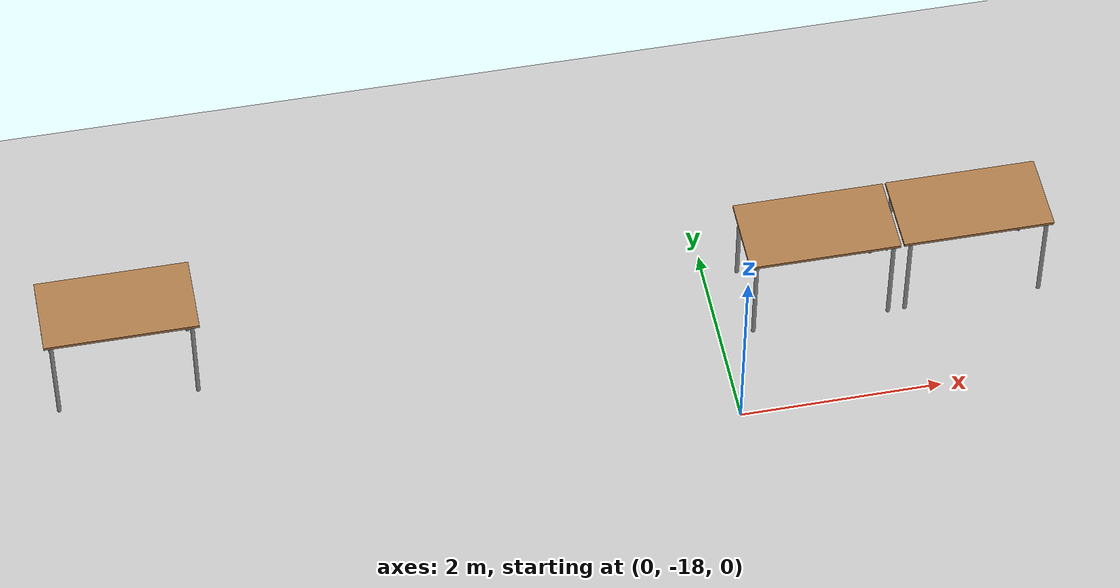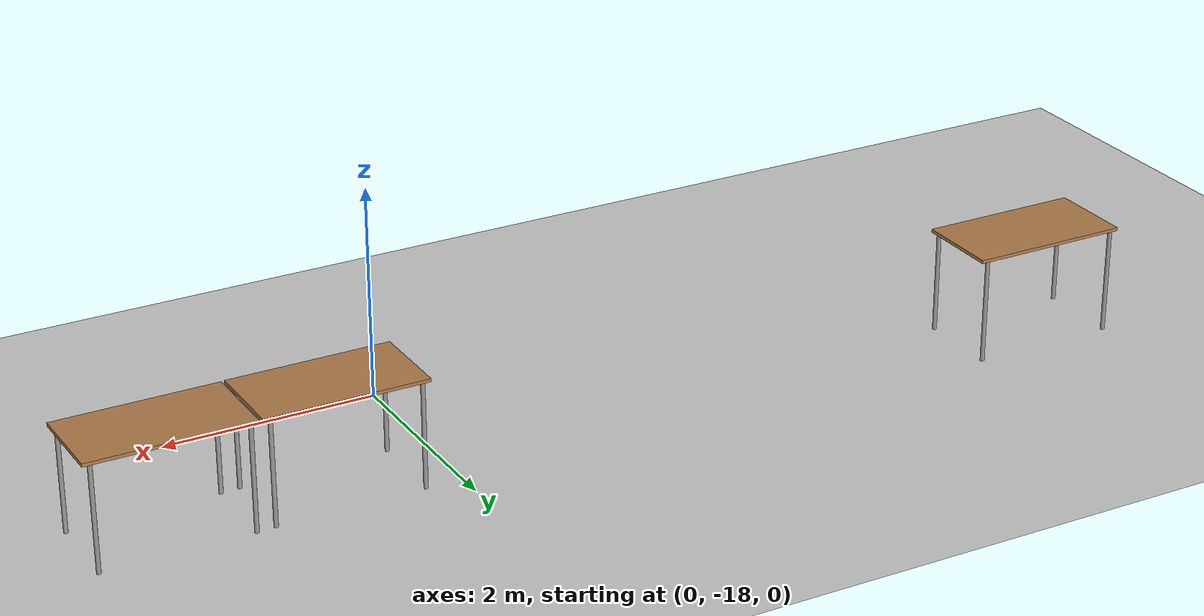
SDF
<sdf version="1.6">
 <world name="default">
  <model name="ground_plane">
   <static>1</static>
   <link name="link">
    <collision name="collision">
     <geometry><plane><normal>0 0 1</normal><size>100 100</size></plane></geometry>
     <surface><friction><ode><mu>100</mu><mu2>50</mu2></ode></friction></surface>
    </collision>
    <visual name="visual">
     <cast_shadows>0</cast_shadows>
     <geometry><plane><normal>0 0 1</normal><size>100 100</size></plane></geometry>
     <material>
      <script><uri>file://media/materials/scripts/gazebo.material</uri><name>Gazebo/Grey</name></script>
     </material>
    </visual>
   </link>
  </model>
  <model name="table_clone_5">
   <static>1</static>
   <link name="link">
    <collision name="surface">
     <pose>0 0 1 0 -0 0</pose>
     <geometry><box><size>1.5 0.8 0.03</size></box></geometry>
     <surface><friction><ode><mu>0.6</mu><mu2>0.6</mu2></ode></friction></surface>
    </collision>
    <visual name="visual1">
     <pose>0 0 1 0 -0 0</pose>
     <geometry><box><size>1.5 0.8 0.03</size></box></geometry>
     <material>
      <script><uri>file://media/materials/scripts/gazebo.material</uri><name>Gazebo/Wood</name></script>
     </material>
    </visual>
    <collision name="front_left_leg">
     <pose>0.68 0.38 0.5 0 -0 0</pose>
     <geometry><cylinder><radius>0.02</radius><length>1</length></cylinder></geometry>
    </collision>
    <visual name="front_left_leg">
     <pose>0.68 0.38 0.5 0 -0 0</pose>
     <geometry><cylinder><radius>0.02</radius><length>1</length></cylinder></geometry>
     <material>
      <script><uri>file://media/materials/scripts/gazebo.material</uri><name>Gazebo/Grey</name></script>
     </material>
    </visual>
    <collision name="front_right_leg">
     <pose>0.68 -0.38 0.5 0 -0 0</pose>
     <geometry><cylinder><radius>0.02</radius><length>1</length></cylinder></geometry>
    </collision>
    <visual name="front_right_leg">
     <pose>0.68 -0.38 0.5 0 -0 0</pose>
     <geometry><cylinder><radius>0.02</radius><length>1</length></cylinder></geometry>
     <material>
      <script><uri>file://media/materials/scripts/gazebo.material</uri><name>Gazebo/Grey</name></script>
     </material>
    </visual>
    <collision name="back_right_leg">
     <pose>-0.68 -0.38 0.5 0 -0 0</pose>
     <geometry><cylinder><radius>0.02</radius><length>1</length></cylinder></geometry>
    </collision>
    <visual name="back_right_leg">
     <pose>-0.68 -0.38 0.5 0 -0 0</pose>
     <geometry><cylinder><radius>0.02</radius><length>1</length></cylinder></geometry>
     <material>
      <script><uri>file://media/materials/scripts/gazebo.material</uri><name>Gazebo/Grey</name></script>
     </material>
    </visual>
    <collision name="back_left_leg">
     <pose>-0.68 0.38 0.5 0 -0 0</pose>
     <geometry><cylinder><radius>0.02</radius><length>1</length></cylinder></geometry>
    </collision>
    <visual name="back_left_leg">
     <pose>-0.68 0.38 0.5 0 -0 0</pose>
     <geometry><cylinder><radius>0.02</radius><length>1</length></cylinder></geometry>
     <material>
      <script><uri>file://media/materials/scripts/gazebo.material</uri><name>Gazebo/Grey</name></script>
     </material>
    </visual>
   </link>
   <pose>2.55084 -16.6222 0 0 -0 0</pose>
  </model>
  <model name="table_clone_6">
   <static>1</static>
   <link name="link">
    <collision name="surface">
     <pose>0 0 1 0 -0 0</pose>
     <geometry><box><size>1.5 0.8 0.03</size></box></geometry>
     <surface><friction><ode><mu>0.6</mu><mu2>0.6</mu2></ode></friction></surface>
    </collision>
    <visual name="visual1">
     <pose>0 0 1 0 -0 0</pose>
     <geometry><box><size>1.5 0.8 0.03</size></box></geometry>
     <material>
      <script><uri>file://media/materials/scripts/gazebo.material</uri><name>Gazebo/Wood</name></script>
     </material>
    </visual>
    <collision name="front_left_leg">
     <pose>0.68 0.38 0.5 0 -0 0</pose>
     <geometry><cylinder><radius>0.02</radius><length>1</length></cylinder></geometry>
    </collision>
    <visual name="front_left_leg">
     <pose>0.68 0.38 0.5 0 -0 0</pose>
     <geometry><cylinder><radius>0.02</radius><length>1</length></cylinder></geometry>
     <material>
      <script><uri>file://media/materials/scripts/gazebo.material</uri><name>Gazebo/Grey</name></script>
     </material>
    </visual>
    <collision name="front_right_leg">
     <pose>0.68 -0.38 0.5 0 -0 0</pose>
     <geometry><cylinder><radius>0.02</radius><length>1</length></cylinder></geometry>
    </collision>
    <visual name="front_right_leg">
     <pose>0.68 -0.38 0.5 0 -0 0</pose>
     <geometry><cylinder><radius>0.02</radius><length>1</length></cylinder></geometry>
     <material>
      <script><uri>file://media/materials/scripts/gazebo.material</uri><name>Gazebo/Grey</name></script>
     </material>
    </visual>
    <collision name="back_right_leg">
     <pose>-0.68 -0.38 0.5 0 -0 0</pose>
     <geometry><cylinder><radius>0.02</radius><length>1</length></cylinder></geometry>
    </collision>
    <visual name="back_right_leg">
     <pose>-0.68 -0.38 0.5 0 -0 0</pose>
     <geometry><cylinder><radius>0.02</radius><length>1</length></cylinder></geometry>
     <material>
      <script><uri>file://media/materials/scripts/gazebo.material</uri><name>Gazebo/Grey</name></script>
     </material>
    </visual>
    <collision name="back_left_leg">
     <pose>-0.68 0.38 0.5 0 -0 0</pose>
     <geometry><cylinder><radius>0.02</radius><length>1</length></cylinder></geometry>
    </collision>
    <visual name="back_left_leg">
     <pose>-0.68 0.38 0.5 0 -0 0</pose>
     <geometry><cylinder><radius>0.02</radius><length>1</length></cylinder></geometry>
     <material>
      <script><uri>file://media/materials/scripts/gazebo.material</uri><name>Gazebo/Grey</name></script>
     </material>
    </visual>
   </link>
   <pose>1.01882 -16.6291 0 0 -0 0</pose>
  </model>
  <model name="table_clone_10">
   <static>1</static>
   <link name="link">
    <collision name="surface">
     <pose>0 0 1 0 -0 0</pose>
     <geometry><box><size>1.5 0.8 0.03</size></box></geometry>
     <surface><friction><ode><mu>0.6</mu><mu2>0.6</mu2></ode></friction></surface>
    </collision>
    <visual name="visual1">
     <pose>0 0 1 0 -0 0</pose>
     <geometry><box><size>1.5 0.8 0.03</size></box></geometry>
     <material>
      <script><uri>file://media/materials/scripts/gazebo.material</uri><name>Gazebo/Wood</name></script>
     </material>
    </visual>
    <collision name="front_left_leg">
     <pose>0.68 0.38 0.5 0 -0 0</pose>
     <geometry><cylinder><radius>0.02</radius><length>1</length></cylinder></geometry>
    </collision>
    <visual name="front_left_leg">
     <pose>0.68 0.38 0.5 0 -0 0</pose>
     <geometry><cylinder><radius>0.02</radius><length>1</length></cylinder></geometry>
     <material>
      <script><uri>file://media/materials/scripts/gazebo.material</uri><name>Gazebo/Grey</name></script>
     </material>
    </visual>
    <collision name="front_right_leg">
     <pose>0.68 -0.38 0.5 0 -0 0</pose>
     <geometry><cylinder><radius>0.02</radius><length>1</length></cylinder></geometry>
    </collision>
    <visual name="front_right_leg">
     <pose>0.68 -0.38 0.5 0 -0 0</pose>
     <geometry><cylinder><radius>0.02</radius><length>1</length></cylinder></geometry>
     <material>
      <script><uri>file://media/materials/scripts/gazebo.material</uri><name>Gazebo/Grey</name></script>
     </material>
    </visual>
    <collision name="back_right_leg">
     <pose>-0.68 -0.38 0.5 0 -0 0</pose>
     <geometry><cylinder><radius>0.02</radius><length>1</length></cylinder></geometry>
    </collision>
    <visual name="back_right_leg">
     <pose>-0.68 -0.38 0.5 0 -0 0</pose>
     <geometry><cylinder><radius>0.02</radius><length>1</length></cylinder></geometry>
     <material>
      <script><uri>file://media/materials/scripts/gazebo.material</uri><name>Gazebo/Grey</name></script>
     </material>
    </visual>
    <collision name="back_left_leg">
     <pose>-0.68 0.38 0.5 0 -0 0</pose>
     <geometry><cylinder><radius>0.02</radius><length>1</length></cylinder></geometry>
    </collision>
    <visual name="back_left_leg">
     <pose>-0.68 0.38 0.5 0 -0 0</pose>
     <geometry><cylinder><radius>0.02</radius><length>1</length></cylinder></geometry>
     <material>
      <script><uri>file://media/materials/scripts/gazebo.material</uri><name>Gazebo/Grey</name></script>
     </material>
    </visual>
   </link>
   <pose>-5.80864 -16.3358 0 0 -0 0</pose>
  </model>
 </world>
</sdf>
